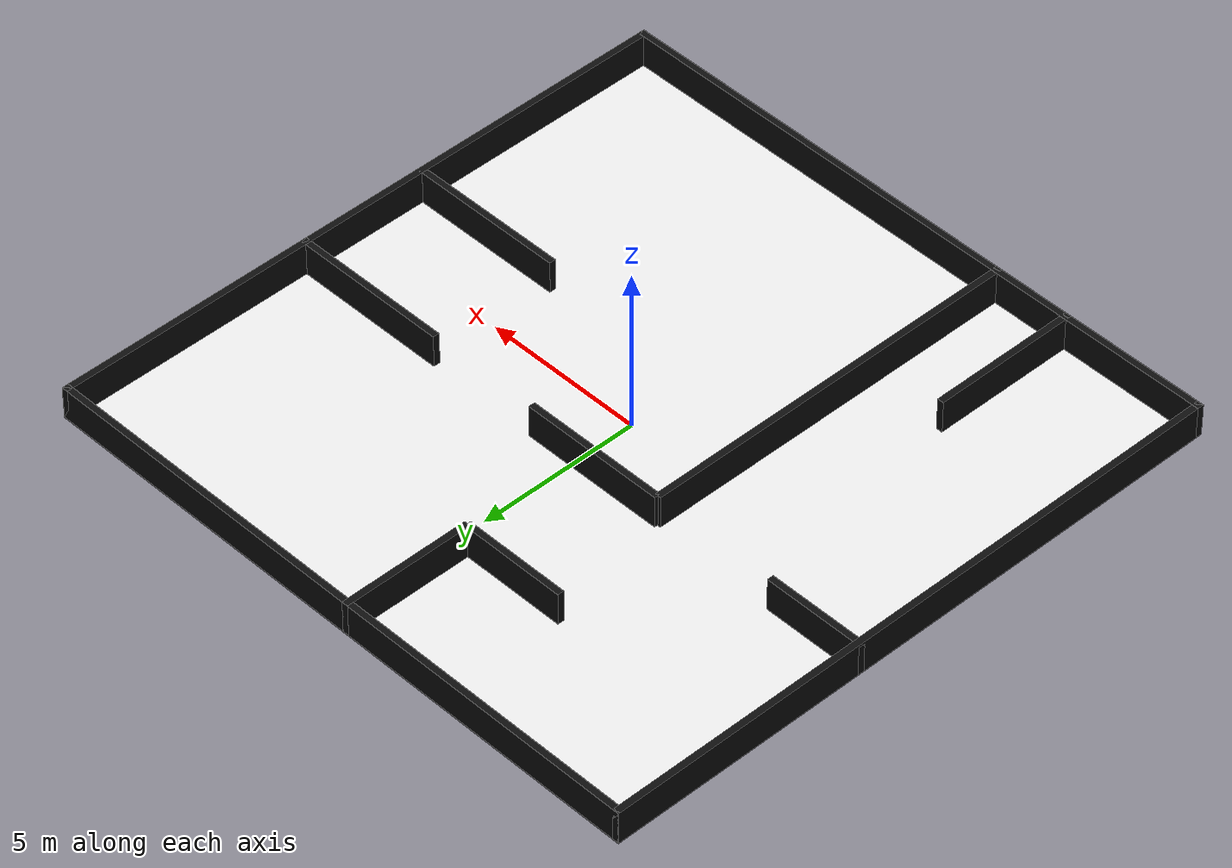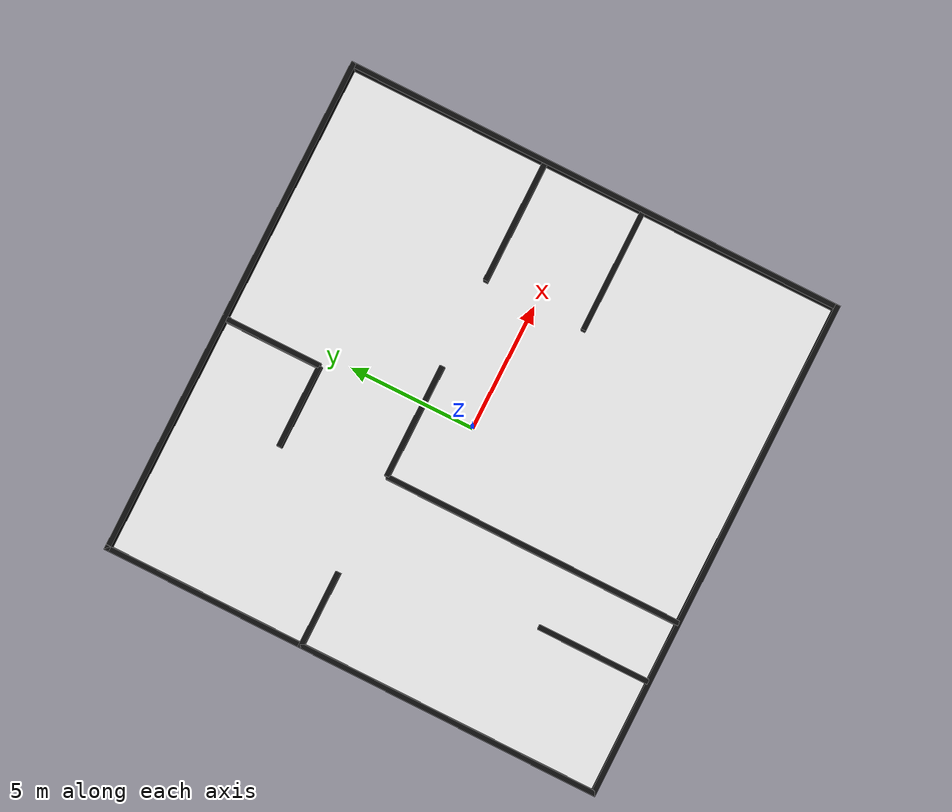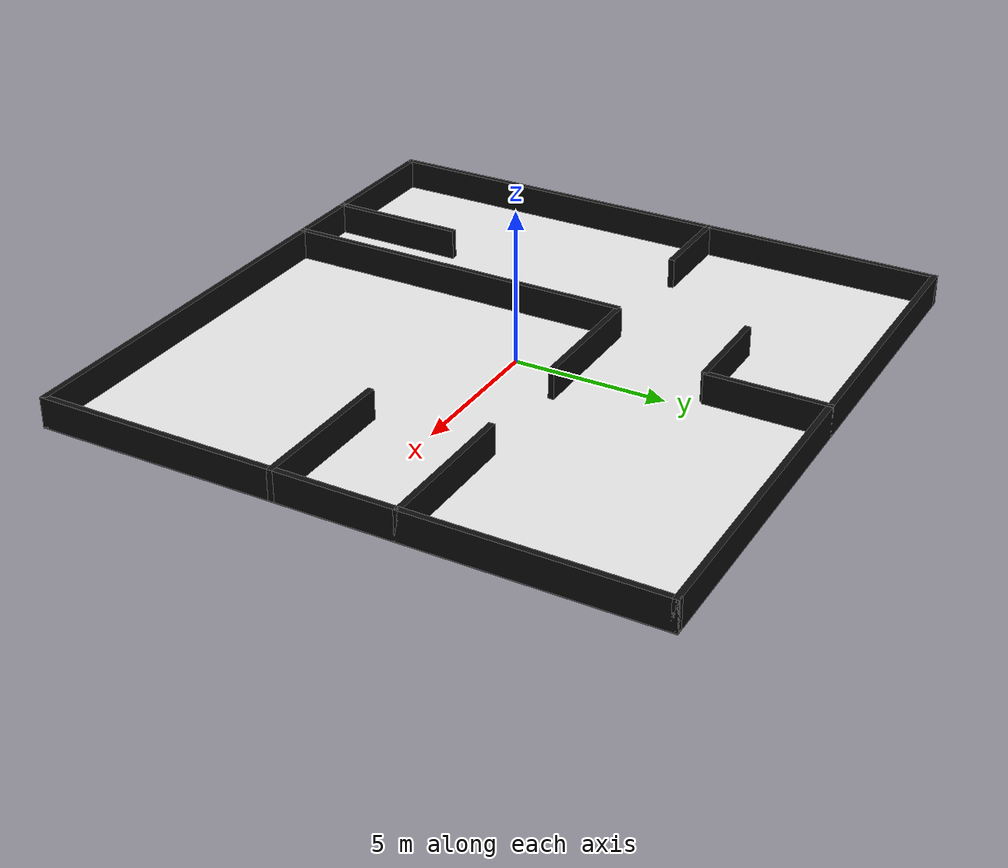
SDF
<?xml version="1.0" ?>
<sdf version="1.9">
  <world name="map_20x20_centered">
    <gravity>0 0 -9.81</gravity>

    <physics name="default_physics" type="ode">
      <max_step_size>0.001</max_step_size>
      <real_time_update_rate>1000</real_time_update_rate>

    </physics>

    <scene>
      <ambient>0.6 0.6 0.6 1</ambient>
      <background>0.8 0.8 0.8 1</background>
    </scene>

    <light name="sun" type="directional">
      <pose>0 0 10 0 0 0</pose>
      <diffuse>0.8 0.8 0.8 1</diffuse>
      <specular>0.2 0.2 0.2 1</specular>
      <direction>-0.5 0.5 -1</direction>
    </light>

    <!-- Ground plane: 20 m x 20 m, centered at world origin -->
    <model name="ground_plane">
      <static>true</static>
      <link name="link">
        <collision name="collision">
          <geometry>
            <box>
              <size>20 20 0.02</size>
            </box>
          </geometry>
        </collision>

        <visual name="visual">
          <geometry>
            <box>
              <size>20 20 0.02</size>
            </box>
          </geometry>
          <material>
            <ambient>0.9 0.9 0.9 1</ambient>
            <diffuse>0.9 0.9 0.9 1</diffuse>
          </material>
        </visual>
      </link>
      <pose>0 0 -0.01 0 0 0</pose>
    </model>

    <!-- External boundary walls -->

    <!-- South wall: y = -10 -->
    <model name="wall_south">
      <static>true</static>
      <link name="link">
        <collision name="collision">
          <geometry>
            <box>
              <size>20 0.2 1.0</size>
            </box>
          </geometry>
        </collision>
        <visual name="visual">
          <geometry>
            <box>
              <size>20 0.2 1.0</size>
            </box>
          </geometry>
          <material>
            <ambient>0.05 0.05 0.05 1</ambient>
            <diffuse>0.05 0.05 0.05 1</diffuse>
          </material>
        </visual>
      </link>
      <pose>0 -9.9 0.5 0 0 0</pose>
    </model>

    <!-- North wall: y = 10 -->
    <model name="wall_north">
      <static>true</static>
      <link name="link">
        <collision name="collision">
          <geometry>
            <box>
              <size>20 0.2 1.0</size>
            </box>
          </geometry>
        </collision>
        <visual name="visual">
          <geometry>
            <box>
              <size>20 0.2 1.0</size>
            </box>
          </geometry>
          <material>
            <ambient>0.05 0.05 0.05 1</ambient>
            <diffuse>0.05 0.05 0.05 1</diffuse>
          </material>
        </visual>
      </link>
      <pose>0 9.9 0.5 0 0 0</pose>
    </model>

    <!-- West wall: x = -10 -->
    <model name="wall_west">
      <static>true</static>
      <link name="link">
        <collision name="collision">
          <geometry>
            <box>
              <size>0.2 20 1.0</size>
            </box>
          </geometry>
        </collision>
        <visual name="visual">
          <geometry>
            <box>
              <size>0.2 20 1.0</size>
            </box>
          </geometry>
          <material>
            <ambient>0.05 0.05 0.05 1</ambient>
            <diffuse>0.05 0.05 0.05 1</diffuse>
          </material>
        </visual>
      </link>
      <pose>-9.9 0 0.5 0 0 0</pose>
    </model>

    <!-- East wall: x = 10 -->
    <model name="wall_east">
      <static>true</static>
      <link name="link">
        <collision name="collision">
          <geometry>
            <box>
              <size>0.2 20 1.0</size>
            </box>
          </geometry>
        </collision>
        <visual name="visual">
          <geometry>
            <box>
              <size>0.2 20 1.0</size>
            </box>
          </geometry>
          <material>
            <ambient>0.05 0.05 0.05 1</ambient>
            <diffuse>0.05 0.05 0.05 1</diffuse>
          </material>
        </visual>
      </link>
      <pose>9.9 0 0.5 0 0 0</pose>
    </model>

    <!-- Internal maze walls -->

    <!-- Left middle horizontal wall -->
    <model name="wall_left_middle">
      <static>true</static>
      <link name="link">
        <collision name="collision">
          <geometry>
            <box>
              <size>3.1 0.2 1.0</size>
            </box>
          </geometry>
        </collision>
        <visual name="visual">
          <geometry>
            <box>
              <size>3.1 0.2 1.0</size>
            </box>
          </geometry>
          <material>
            <ambient>0.05 0.05 0.05 1</ambient>
            <diffuse>0.05 0.05 0.05 1</diffuse>
          </material>
        </visual>
      </link>
      <pose>-8.45 2.0 0.5 0 0 0</pose>
    </model>

    <!-- Lower-left vertical wall -->
    <model name="wall_lower_vertical">
      <static>true</static>
      <link name="link">
        <collision name="collision">
          <geometry>
            <box>
              <size>0.2 4.6 1.0</size>
            </box>
          </geometry>
        </collision>
        <visual name="visual">
          <geometry>
            <box>
              <size>0.2 4.6 1.0</size>
            </box>
          </geometry>
          <material>
            <ambient>0.05 0.05 0.05 1</ambient>
            <diffuse>0.05 0.05 0.05 1</diffuse>
          </material>
        </visual>
      </link>
      <pose>-5.4 -7.7 0.5 0 0 0</pose>
    </model>

    <!-- Central vertical wall -->
    <model name="wall_center_vertical">
      <static>true</static>
      <link name="link">
        <collision name="collision">
          <geometry>
            <box>
              <size>0.2 12.0 1.0</size>
            </box>
          </geometry>
        </collision>
        <visual name="visual">
          <geometry>
            <box>
              <size>0.2 12.0 1.0</size>
            </box>
          </geometry>
          <material>
            <ambient>0.05 0.05 0.05 1</ambient>
            <diffuse>0.05 0.05 0.05 1</diffuse>
          </material>
        </visual>
      </link>
      <pose>-3.0 -4.0 0.5 0 0 0</pose>
    </model>

    <!-- Central horizontal wall -->
    <model name="wall_center_horizontal">
      <static>true</static>
      <link name="link">
        <collision name="collision">
          <geometry>
            <box>
              <size>4.5 0.2 1.0</size>
            </box>
          </geometry>
        </collision>
        <visual name="visual">
          <geometry>
            <box>
              <size>4.5 0.2 1.0</size>
            </box>
          </geometry>
          <material>
            <ambient>0.05 0.05 0.05 1</ambient>
            <diffuse>0.05 0.05 0.05 1</diffuse>
          </material>
        </visual>
      </link>
      <pose>-0.75 2.0 0.5 0 0 0</pose>
    </model>

    <!-- Upper central vertical wall -->
    <model name="wall_top_vertical">
      <static>true</static>
      <link name="link">
        <collision name="collision">
          <geometry>
            <box>
              <size>0.2 4.0 1.0</size>
            </box>
          </geometry>
        </collision>
        <visual name="visual">
          <geometry>
            <box>
              <size>0.2 4.0 1.0</size>
            </box>
          </geometry>
          <material>
            <ambient>0.05 0.05 0.05 1</ambient>
            <diffuse>0.05 0.05 0.05 1</diffuse>
          </material>
        </visual>
      </link>
      <pose>-0.5 8.0 0.5 0 0 0</pose>
    </model>

    <!-- Upper horizontal wall -->
    <model name="wall_top_horizontal">
      <static>true</static>
      <link name="link">
        <collision name="collision">
          <geometry>
            <box>
              <size>3.3 0.2 1.0</size>
            </box>
          </geometry>
        </collision>
        <visual name="visual">
          <geometry>
            <box>
              <size>3.3 0.2 1.0</size>
            </box>
          </geometry>
          <material>
            <ambient>0.05 0.05 0.05 1</ambient>
            <diffuse>0.05 0.05 0.05 1</diffuse>
          </material>
        </visual>
      </link>
      <pose>-2.15 6.0 0.5 0 0 0</pose>
    </model>

    <!-- Right upper horizontal wall -->
    <model name="wall_right_upper">
      <static>true</static>
      <link name="link">
        <collision name="collision">
          <geometry>
            <box>
              <size>5.0 0.2 1.0</size>
            </box>
          </geometry>
        </collision>
        <visual name="visual">
          <geometry>
            <box>
              <size>5.0 0.2 1.0</size>
            </box>
          </geometry>
          <material>
            <ambient>0.05 0.05 0.05 1</ambient>
            <diffuse>0.05 0.05 0.05 1</diffuse>
          </material>
        </visual>
      </link>
      <pose>7.5 2.0 0.5 0 0 0</pose>
    </model>

    <!-- Right lower horizontal wall -->
    <model name="wall_right_lower">
      <static>true</static>
      <link name="link">
        <collision name="collision">
          <geometry>
            <box>
              <size>5.0 0.2 1.0</size>
            </box>
          </geometry>
        </collision>
        <visual name="visual">
          <geometry>
            <box>
              <size>5.0 0.2 1.0</size>
            </box>
          </geometry>
          <material>
            <ambient>0.05 0.05 0.05 1</ambient>
            <diffuse>0.05 0.05 0.05 1</diffuse>
          </material>
        </visual>
      </link>
      <pose>7.5 -2.0 0.5 0 0 0</pose>
    </model>

  </world>
</sdf>
